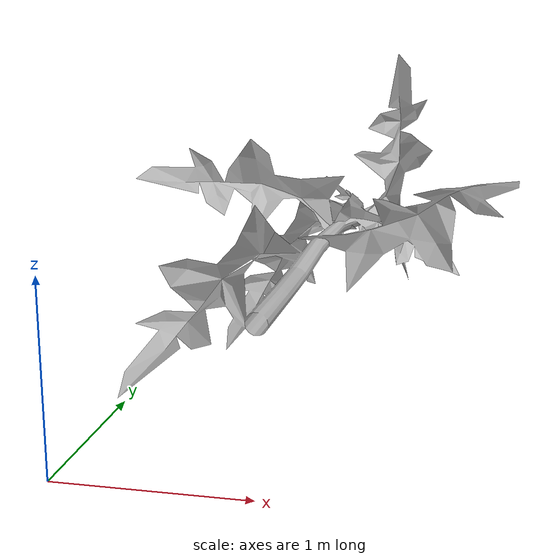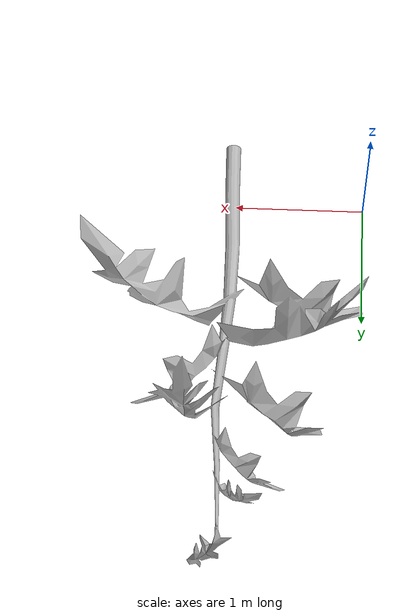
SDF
<?xml version="1.0" ?>
<sdf version="1.6">
  <model name="plant">
    <static>true</static>
    <link name="link">
      <visual name="visual">
        <geometry>
          <mesh>
            <scale>0.01 0.01 0.01</scale>
            <uri>model://plant/meshes/plant.STL</uri>
          </mesh>
        </geometry>
      </visual>
    </link>
  </model>
</sdf>
